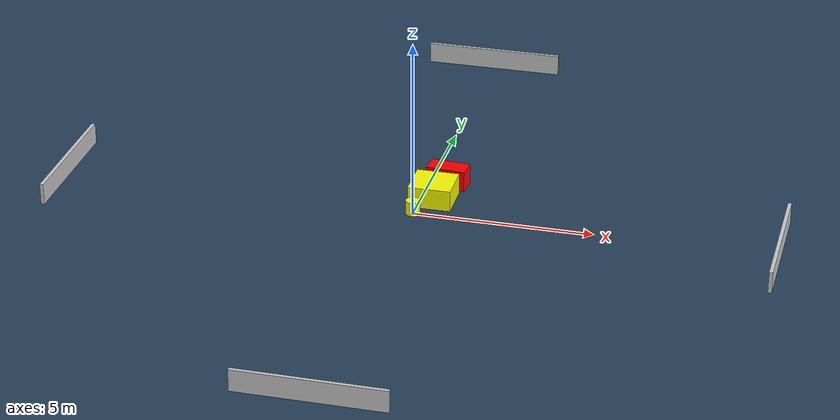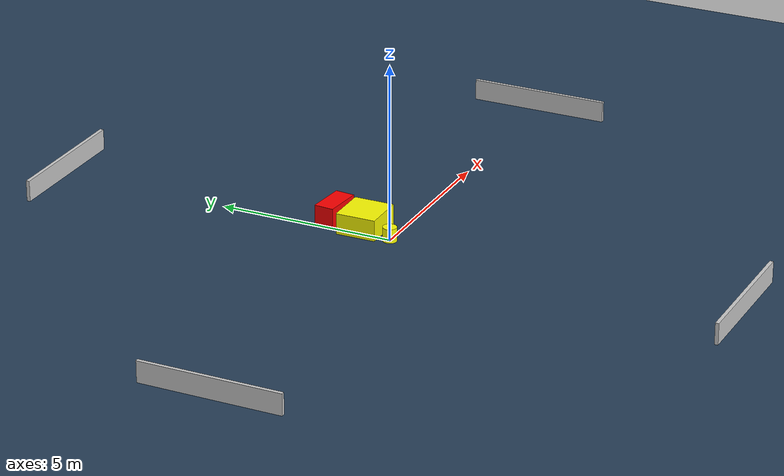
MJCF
<?xml version="1.0" ?>
<mujoco model="generated_environment">
  <option timestep="0.01" integrator="RK4" cone="elliptic"/>
  <default>
    <geom density="1"/>
  </default>
  <asset>
    <texture builtin="gradient" height="3072" name="skybox" rgb1="0.3 0.5 0.7" rgb2="0 0 0" type="skybox" width="512"/>
    <texture builtin="checker" height="300" name="groundplane" rgb1="0.2 0.3 0.4" rgb2="0.1 0.2 0.3" type="2d" width="300"/>
    <material name="groundplane" reflectance="0.2" texrepeat="5 5" texture="groundplane"/>
  </asset>
  <worldbody>
    <light dir="0 0 -1" directional="true" pos="0 0 1.5"/>
    <geom condim="3" friction="0.5 0.005 0.001" material="groundplane" name="floor" pos="0 0 0" size="0 0 0.05" type="plane"/>
    <body name="walls">
      <geom name="wall_1" condim="4" pos="-10.0 0.0 0.3" rgba="0.800000011920929 0.800000011920929 0.800000011920929 1.0" size="0.05 2.0 0.3" type="box"/>
      <geom name="wall_2" condim="4" pos="10.0 0.0 0.3" rgba="0.800000011920929 0.800000011920929 0.800000011920929 1.0" size="0.05 2.0 0.3" type="box"/>
      <geom name="wall_3" condim="4" pos="0.0 -10.0 0.3" rgba="0.800000011920929 0.800000011920929 0.800000011920929 1.0" size="2.0 0.05 0.3" type="box"/>
      <geom name="wall_4" condim="4" pos="0.0 10.0 0.3" rgba="0.800000011920929 0.800000011920929 0.800000011920929 1.0" size="2.0 0.05 0.3" type="box"/>
    </body>
    <body name="robot">
      <joint name="joint_x" type="slide" pos="0 0 0" axis="1 0 0"/>
      <joint name="joint_y" type="slide" pos="0 0 0" axis="0 1 0"/>
      <geom name="robot" type="cylinder" pos="0.0 0.0 0.2" size="0.2 0.2 0.0" mass="5.0" friction="1.0 0.005 0.0001" condim="4" rgba="1.0 1.0 0.0 1.0"/>
    </body>
    <body name="obstacle_1_movable">
      <geom name="obstacle_1_movable" condim="4" pos="0.3496752610318734 0.910736526165386 0.3" euler="0 0 0.5840168258296785" friction="0.0 0.005 0.001" rgba="1.0 1.0 0.0 1.0" size="0.5964790694527828 0.5689439179113114 0.3" type="box" mass="0.1"/>
      <joint type="free"/>
    </body>
    <body name="obstacle_2_static">
      <geom name="obstacle_2_static" condim="4" pos="0.5210090774620287 1.9071370712723712 0.3" euler="0 0 85.12855952487597" friction="0.0 0.005 0.001" rgba="1.0 0.0 0.0 1.0" size="0.2767053334320182 0.5519248613789023 0.3" type="box"/>
    </body>
  </worldbody>
  <actuator>
    <motor name="actuator_x" joint="joint_x" gear="1" ctrlrange="-1 1"/>
    <motor name="actuator_y" joint="joint_y" gear="1" ctrlrange="-1 1"/>
  </actuator>
</mujoco>
